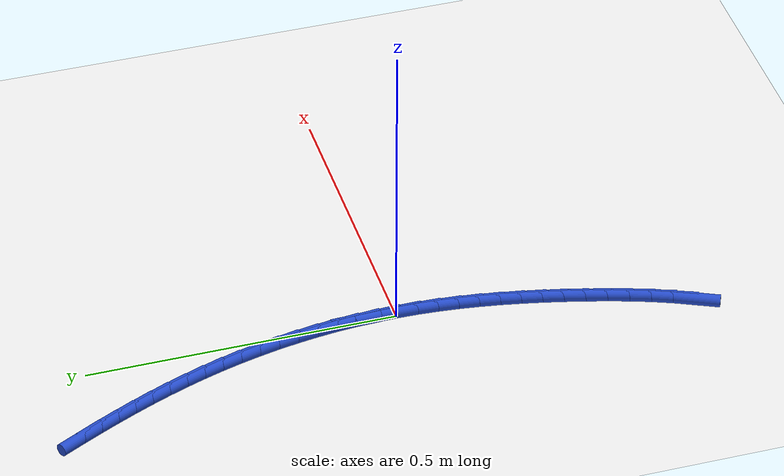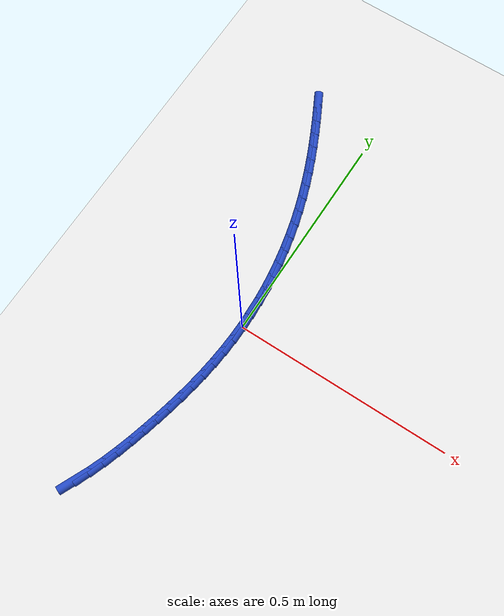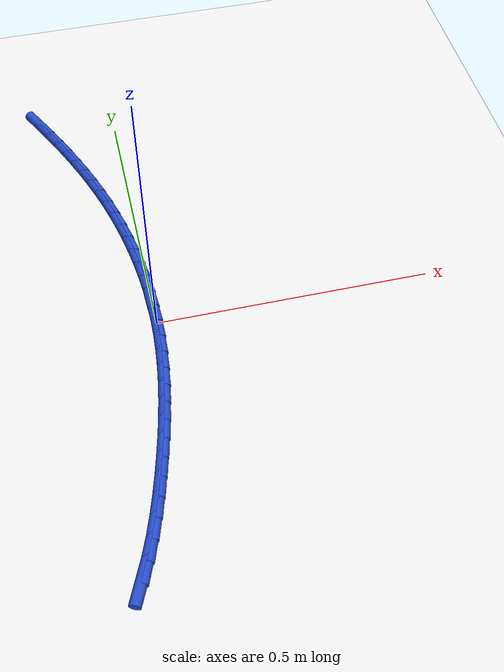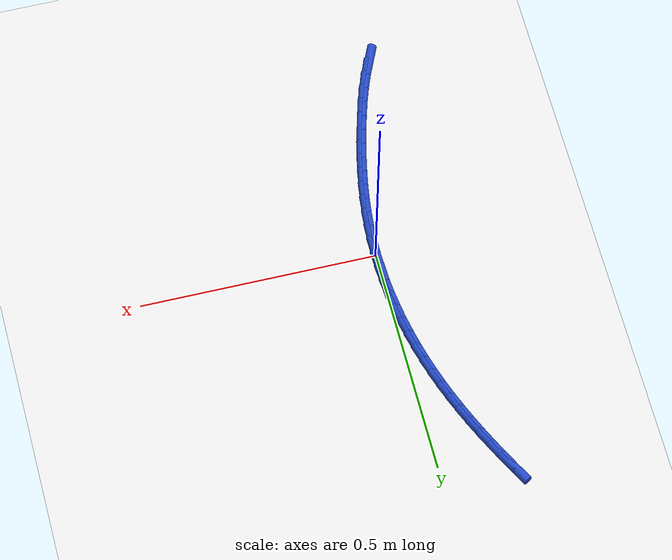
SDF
<sdf version="1.6">
 <world name="default">
  <model name="ground_plane">
   <static>1</static>
   <link name="link">
    <collision name="collision">
     <geometry><plane><normal>0 0 1</normal><size>100 100</size></plane></geometry>
     <surface><friction><ode><mu>100</mu><mu2>50</mu2></ode></friction></surface>
    </collision>
    <visual name="visual">
     <cast_shadows>0</cast_shadows>
     <geometry><plane><normal>0 0 1</normal><size>100 100</size></plane></geometry>
     <material>
      <script><uri>file://media/materials/scripts/gazebo.material</uri><name>Gazebo/WhiteGlow</name></script>
     </material>
    </visual>
   </link>
  </model>
  <model name="line">
   <link name="link_0">
    <pose>-1.734723475976807e-18 -4.163336342344337e-17 0.01 0 1.57 -1.5573018915308656</pose>
    <collision name="collision">
     <geometry><cylinder><radius>0.01</radius><length>0.08</length></cylinder></geometry>
    </collision>
    <visual name="visual">
     <material>
      <script><name>Gazebo/Blue</name><uri>file://media/materials/scripts/gazebo.material</uri></script>
     </material>
     <geometry><cylinder><radius>0.01</radius><length>0.08</length></cylinder></geometry>
    </visual>
   </link>
   <link name="link_1">
    <pose>-0.0004494748009234489 0.033306137582674214 0.01 0 1.57 -1.5205700695620679</pose>
    <collision name="collision">
     <geometry><cylinder><radius>0.01</radius><length>0.08</length></cylinder></geometry>
    </collision>
    <visual name="visual">
     <material>
      <script><name>Gazebo/Blue</name><uri>file://media/materials/scripts/gazebo.material</uri></script>
     </material>
     <geometry><cylinder><radius>0.01</radius><length>0.08</length></cylinder></geometry>
    </visual>
   </link>
   <link name="link_2">
    <pose>-0.0021282769201872386 0.06670281657929593 0.01 0 1.57 -1.4851405836784912</pose>
    <collision name="collision">
     <geometry><cylinder><radius>0.01</radius><length>0.08</length></cylinder></geometry>
    </collision>
    <visual name="visual">
     <material>
      <script><name>Gazebo/Blue</name><uri>file://media/materials/scripts/gazebo.material</uri></script>
     </material>
     <geometry><cylinder><radius>0.01</radius><length>0.08</length></cylinder></geometry>
    </visual>
   </link>
   <link name="link_3">
    <pose>-0.00499719474859924 0.10011444740390042 0.01 0 1.57 -1.4508441671208696</pose>
    <collision name="collision">
     <geometry><cylinder><radius>0.01</radius><length>0.08</length></cylinder></geometry>
    </collision>
    <visual name="visual">
     <material>
      <script><name>Gazebo/Blue</name><uri>file://media/materials/scripts/gazebo.material</uri></script>
     </material>
     <geometry><cylinder><radius>0.01</radius><length>0.08</length></cylinder></geometry>
    </visual>
   </link>
   <link name="link_4">
    <pose>-0.009017016676967294 0.13346544047052303 0.01 0 1.57 -1.4175132402100814</pose>
    <collision name="collision">
     <geometry><cylinder><radius>0.01</radius><length>0.08</length></cylinder></geometry>
    </collision>
    <visual name="visual">
     <material>
      <script><name>Gazebo/Blue</name><uri>file://media/materials/scripts/gazebo.material</uri></script>
     </material>
     <geometry><cylinder><radius>0.01</radius><length>0.08</length></cylinder></geometry>
    </visual>
   </link>
   <link name="link_5">
    <pose>-0.014148531096099266 0.16668020619319907 0.01 0 1.57 -1.3849817635417208</pose>
    <collision name="collision">
     <geometry><cylinder><radius>0.01</radius><length>0.08</length></cylinder></geometry>
    </collision>
    <visual name="visual">
     <material>
      <script><name>Gazebo/Blue</name><uri>file://media/materials/scripts/gazebo.material</uri></script>
     </material>
     <geometry><cylinder><radius>0.01</radius><length>0.08</length></cylinder></geometry>
    </visual>
   </link>
   <link name="link_6">
    <pose>-0.020352526396803006 0.19968315498596392 0.01 0 1.57 -1.3530846146934308</pose>
    <collision name="collision">
     <geometry><cylinder><radius>0.01</radius><length>0.08</length></cylinder></geometry>
    </collision>
    <visual name="visual">
     <material>
      <script><name>Gazebo/Blue</name><uri>file://media/materials/scripts/gazebo.material</uri></script>
     </material>
     <geometry><cylinder><radius>0.01</radius><length>0.08</length></cylinder></geometry>
    </visual>
   </link>
   <link name="link_7">
    <pose>-0.027589790969886372 0.2323986972628528 0.01 0 1.57 -1.321656568100622</pose>
    <collision name="collision">
     <geometry><cylinder><radius>0.01</radius><length>0.08</length></cylinder></geometry>
    </collision>
    <visual name="visual">
     <material>
      <script><name>Gazebo/Blue</name><uri>file://media/materials/scripts/gazebo.material</uri></script>
     </material>
     <geometry><cylinder><radius>0.01</radius><length>0.08</length></cylinder></geometry>
    </visual>
   </link>
   <link name="link_8">
    <pose>-0.035821113206157204 0.26475124343790113 0.01 0 1.57 -1.2905309842531874</pose>
    <collision name="collision">
     <geometry><cylinder><radius>0.01</radius><length>0.08</length></cylinder></geometry>
    </collision>
    <visual name="visual">
     <material>
      <script><name>Gazebo/Blue</name><uri>file://media/materials/scripts/gazebo.material</uri></script>
     </material>
     <geometry><cylinder><radius>0.01</radius><length>0.08</length></cylinder></geometry>
    </visual>
   </link>
   <link name="link_9">
    <pose>-0.04500728123557899 0.29666520948381325 0.01 0 1.57 -1.2598593176932391</pose>
    <collision name="collision">
     <geometry><cylinder><radius>0.01</radius><length>0.08</length></cylinder></geometry>
    </collision>
    <visual name="visual">
     <material>
      <script><name>Gazebo/Blue</name><uri>file://media/materials/scripts/gazebo.material</uri></script>
     </material>
     <geometry><cylinder><radius>0.01</radius><length>0.08</length></cylinder></geometry>
    </visual>
   </link>
   <link name="link_10">
    <pose>-0.055107664901555574 0.32809523546798525 0.01 0 1.57 -1.2307163337002167</pose>
    <collision name="collision">
     <geometry><cylinder><radius>0.01</radius><length>0.08</length></cylinder></geometry>
    </collision>
    <visual name="visual">
     <material>
      <script><name>Gazebo/Blue</name><uri>file://media/materials/scripts/gazebo.material</uri></script>
     </material>
     <geometry><cylinder><radius>0.01</radius><length>0.08</length></cylinder></geometry>
    </visual>
   </link>
   <link name="link_11">
    <pose>-0.06607689624222901 0.3590969254512242 0.01 0 1.57 -1.2035299680736895</pose>
    <collision name="collision">
     <geometry><cylinder><radius>0.01</radius><length>0.08</length></cylinder></geometry>
    </collision>
    <visual name="visual">
     <material>
      <script><name>Gazebo/Blue</name><uri>file://media/materials/scripts/gazebo.material</uri></script>
     </material>
     <geometry><cylinder><radius>0.01</radius><length>0.08</length></cylinder></geometry>
    </visual>
   </link>
   <link name="link_12">
    <pose>-0.07786861917067017 0.38974694072393384 0.01 0 1.57 -1.1784873235248032</pose>
    <collision name="collision">
     <geometry><cylinder><radius>0.01</radius><length>0.08</length></cylinder></geometry>
    </collision>
    <visual name="visual">
     <material>
      <script><name>Gazebo/Blue</name><uri>file://media/materials/scripts/gazebo.material</uri></script>
     </material>
     <geometry><cylinder><radius>0.01</radius><length>0.08</length></cylinder></geometry>
    </visual>
   </link>
   <link name="link_13">
    <pose>-0.0904364775999499 0.42012194257651847 0.01 0 1.57 -1.1557367660093023</pose>
    <collision name="collision">
     <geometry><cylinder><radius>0.01</radius><length>0.08</length></cylinder></geometry>
    </collision>
    <visual name="visual">
     <material>
      <script><name>Gazebo/Blue</name><uri>file://media/materials/scripts/gazebo.material</uri></script>
     </material>
     <geometry><cylinder><radius>0.01</radius><length>0.08</length></cylinder></geometry>
    </visual>
   </link>
   <link name="link_14">
    <pose>-0.10373411544313907 0.45029859229938207 0.01 0 1.57 -1.1353880557767184</pose>
    <collision name="collision">
     <geometry><cylinder><radius>0.01</radius><length>0.08</length></cylinder></geometry>
    </collision>
    <visual name="visual">
     <material>
      <script><name>Gazebo/Blue</name><uri>file://media/materials/scripts/gazebo.material</uri></script>
     </material>
     <geometry><cylinder><radius>0.01</radius><length>0.08</length></cylinder></geometry>
    </visual>
   </link>
   <link name="link_15">
    <pose>-0.11771517661330848 0.48035355118292855 0.01 0 1.57 -1.1175140134919035</pose>
    <collision name="collision">
     <geometry><cylinder><radius>0.01</radius><length>0.08</length></cylinder></geometry>
    </collision>
    <visual name="visual">
     <material>
      <script><name>Gazebo/Blue</name><uri>file://media/materials/scripts/gazebo.material</uri></script>
     </material>
     <geometry><cylinder><radius>0.01</radius><length>0.08</length></cylinder></geometry>
    </visual>
   </link>
   <link name="link_16">
    <pose>-0.13233330502352905 0.5103634805175619 0.01 0 1.57 -1.1021532984503988</pose>
    <collision name="collision">
     <geometry><cylinder><radius>0.01</radius><length>0.08</length></cylinder></geometry>
    </collision>
    <visual name="visual">
     <material>
      <script><name>Gazebo/Blue</name><uri>file://media/materials/scripts/gazebo.material</uri></script>
     </material>
     <geometry><cylinder><radius>0.01</radius><length>0.08</length></cylinder></geometry>
    </visual>
   </link>
   <link name="link_17">
    <pose>-0.14754214458687157 0.5404050415936863 0.01 0 1.57 -1.0893138782590823</pose>
    <collision name="collision">
     <geometry><cylinder><radius>0.01</radius><length>0.08</length></cylinder></geometry>
    </collision>
    <visual name="visual">
     <material>
      <script><name>Gazebo/Blue</name><uri>file://media/materials/scripts/gazebo.material</uri></script>
     </material>
     <geometry><cylinder><radius>0.01</radius><length>0.08</length></cylinder></geometry>
    </visual>
   </link>
   <link name="link_196">
    <pose>-0.10220012738862766 -0.45844670184564773 0.01 0 1.57 1.1458250178000602</pose>
    <collision name="collision">
     <geometry><cylinder><radius>0.01</radius><length>0.08</length></cylinder></geometry>
    </collision>
    <visual name="visual">
     <material>
      <script><name>Gazebo/Blue</name><uri>file://media/materials/scripts/gazebo.material</uri></script>
     </material>
     <geometry><cylinder><radius>0.01</radius><length>0.08</length></cylinder></geometry>
    </visual>
   </link>
   <link name="link_197">
    <pose>-0.08822306420741118 -0.42756148058324933 0.01 0 1.57 1.1967726625366482</pose>
    <collision name="collision">
     <geometry><cylinder><radius>0.01</radius><length>0.08</length></cylinder></geometry>
    </collision>
    <visual name="visual">
     <material>
      <script><name>Gazebo/Blue</name><uri>file://media/materials/scripts/gazebo.material</uri></script>
     </material>
     <geometry><cylinder><radius>0.01</radius><length>0.08</length></cylinder></geometry>
    </visual>
   </link>
   <link name="link_198">
    <pose>-0.0757024546871394 -0.3956617895439724 0.01 0 1.57 1.238591563093825</pose>
    <collision name="collision">
     <geometry><cylinder><radius>0.01</radius><length>0.08</length></cylinder></geometry>
    </collision>
    <visual name="visual">
     <material>
      <script><name>Gazebo/Blue</name><uri>file://media/materials/scripts/gazebo.material</uri></script>
     </material>
     <geometry><cylinder><radius>0.01</radius><length>0.08</length></cylinder></geometry>
    </visual>
   </link>
   <link name="link_199">
    <pose>-0.06444675120340541 -0.3630356321721612 0.01 0 1.57 1.2720593753155263</pose>
    <collision name="collision">
     <geometry><cylinder><radius>0.01</radius><length>0.08</length></cylinder></geometry>
    </collision>
    <visual name="visual">
     <material>
      <script><name>Gazebo/Blue</name><uri>file://media/materials/scripts/gazebo.material</uri></script>
     </material>
     <geometry><cylinder><radius>0.01</radius><length>0.08</length></cylinder></geometry>
    </visual>
   </link>
   <link name="link_200">
    <pose>-0.05426440613180228 -0.32997101191215994 0.01 0 1.57 1.2977789142298364</pose>
    <collision name="collision">
     <geometry><cylinder><radius>0.01</radius><length>0.08</length></cylinder></geometry>
    </collision>
    <visual name="visual">
     <material>
      <script><name>Gazebo/Blue</name><uri>file://media/materials/scripts/gazebo.material</uri></script>
     </material>
     <geometry><cylinder><radius>0.01</radius><length>0.08</length></cylinder></geometry>
    </visual>
   </link>
   <link name="link_201">
    <pose>-0.044963871847923116 -0.29675593220831337 0.01 0 1.57 1.3174792299326783</pose>
    <collision name="collision">
     <geometry><cylinder><radius>0.01</radius><length>0.08</length></cylinder></geometry>
    </collision>
    <visual name="visual">
     <material>
      <script><name>Gazebo/Blue</name><uri>file://media/materials/scripts/gazebo.material</uri></script>
     </material>
     <geometry><cylinder><radius>0.01</radius><length>0.08</length></cylinder></geometry>
    </visual>
   </link>
   <link name="link_202">
    <pose>-0.03638921806776567 -0.2636335971174655 0.01 0 1.57 1.3377270929699594</pose>
    <collision name="collision">
     <geometry><cylinder><radius>0.01</radius><length>0.08</length></cylinder></geometry>
    </collision>
    <visual name="visual">
     <material>
      <script><name>Gazebo/Blue</name><uri>file://media/materials/scripts/gazebo.material</uri></script>
     </material>
     <geometry><cylinder><radius>0.01</radius><length>0.08</length></cylinder></geometry>
    </visual>
   </link>
   <link name="link_203">
    <pose>-0.028555290482647676 -0.23063240916981773 0.01 0 1.57 1.3604636379958224</pose>
    <collision name="collision">
     <geometry><cylinder><radius>0.01</radius><length>0.08</length></cylinder></geometry>
    </collision>
    <visual name="visual">
     <material>
      <script><name>Gazebo/Blue</name><uri>file://media/materials/scripts/gazebo.material</uri></script>
     </material>
     <geometry><cylinder><radius>0.01</radius><length>0.08</length></cylinder></geometry>
    </visual>
   </link>
   <link name="link_204">
    <pose>-0.021528057457175606 -0.19771646894532066 0.01 0 1.57 1.3856813975949507</pose>
    <collision name="collision">
     <geometry><cylinder><radius>0.01</radius><length>0.08</length></cylinder></geometry>
    </collision>
    <visual name="visual">
     <material>
      <script><name>Gazebo/Blue</name><uri>file://media/materials/scripts/gazebo.material</uri></script>
     </material>
     <geometry><cylinder><radius>0.01</radius><length>0.08</length></cylinder></geometry>
    </visual>
   </link>
   <link name="link_205">
    <pose>-0.015373496758190391 -0.16484986519782244 0.01 0 1.57 1.4133461901638922</pose>
    <collision name="collision">
     <geometry><cylinder><radius>0.01</radius><length>0.08</length></cylinder></geometry>
    </collision>
    <visual name="visual">
     <material>
      <script><name>Gazebo/Blue</name><uri>file://media/materials/scripts/gazebo.material</uri></script>
     </material>
     <geometry><cylinder><radius>0.01</radius><length>0.08</length></cylinder></geometry>
    </visual>
   </link>
   <link name="link_206">
    <pose>-0.010157586152532965 -0.1319966866811712 0.01 0 1.57 1.4433928879836615</pose>
    <collision name="collision">
     <geometry><cylinder><radius>0.01</radius><length>0.08</length></cylinder></geometry>
    </collision>
    <visual name="visual">
     <material>
      <script><name>Gazebo/Blue</name><uri>file://media/materials/scripts/gazebo.material</uri></script>
     </material>
     <geometry><cylinder><radius>0.01</radius><length>0.08</length></cylinder></geometry>
    </visual>
   </link>
   <link name="link_207">
    <pose>-0.0059463034070442785 -0.09912102214921516 0.01 0 1.57 1.4757212556236043</pose>
    <collision name="collision">
     <geometry><cylinder><radius>0.01</radius><length>0.08</length></cylinder></geometry>
    </collision>
    <visual name="visual">
     <material>
      <script><name>Gazebo/Blue</name><uri>file://media/materials/scripts/gazebo.material</uri></script>
     </material>
     <geometry><cylinder><radius>0.01</radius><length>0.08</length></cylinder></geometry>
    </visual>
   </link>
   <link name="link_208">
    <pose>-0.00280562628856526 -0.06618696035580249 0.01 0 1.57 1.510192683345232</pose>
    <collision name="collision">
     <geometry><cylinder><radius>0.01</radius><length>0.08</length></cylinder></geometry>
    </collision>
    <visual name="visual">
     <material>
      <script><name>Gazebo/Blue</name><uri>file://media/materials/scripts/gazebo.material</uri></script>
     </material>
     <geometry><cylinder><radius>0.01</radius><length>0.08</length></cylinder></geometry>
    </visual>
   </link>
   <link name="link_209">
    <pose>-0.0008015325639368163 -0.03315859005478052 0.01 0 1.57 1.5466283359261321</pose>
    <collision name="collision">
     <geometry><cylinder><radius>0.01</radius><length>0.08</length></cylinder></geometry>
    </collision>
    <visual name="visual">
     <material>
      <script><name>Gazebo/Blue</name><uri>file://media/materials/scripts/gazebo.material</uri></script>
     </material>
     <geometry><cylinder><radius>0.01</radius><length>0.08</length></cylinder></geometry>
    </visual>
   </link>
   <link name="link_210">
    <pose>1.3010426069826053e-17 1.3877787807814457e-16 0.01 0 1.57 -1.556783432429847</pose>
    <collision name="collision">
     <geometry><cylinder><radius>0.01</radius><length>0.08</length></cylinder></geometry>
    </collision>
    <visual name="visual">
     <material>
      <script><name>Gazebo/Blue</name><uri>file://media/materials/scripts/gazebo.material</uri></script>
     </material>
     <geometry><cylinder><radius>0.01</radius><length>0.08</length></cylinder></geometry>
    </visual>
   </link>
   <link name="link_211">
    <pose>-0.00046700636359561353 0.0333247210546937 0.01 0 1.57 -1.5171140737349607</pose>
    <collision name="collision">
     <geometry><cylinder><radius>0.01</radius><length>0.08</length></cylinder></geometry>
    </collision>
    <visual name="visual">
     <material>
      <script><name>Gazebo/Blue</name><uri>file://media/materials/scripts/gazebo.material</uri></script>
     </material>
     <geometry><cylinder><radius>0.01</radius><length>0.08</length></cylinder></geometry>
    </visual>
   </link>
   <link name="link_212">
    <pose>-0.002268529421564778 0.06685148435545275 0.01 0 1.57 -1.5368754751975213</pose>
    <collision name="collision">
     <geometry><cylinder><radius>0.01</radius><length>0.08</length></cylinder></geometry>
    </collision>
    <visual name="visual">
     <material>
      <script><name>Gazebo/Blue</name><uri>file://media/materials/scripts/gazebo.material</uri></script>
     </material>
     <geometry><cylinder><radius>0.01</radius><length>0.08</length></cylinder></geometry>
    </visual>
   </link>
  </model>
 </world>
</sdf>
